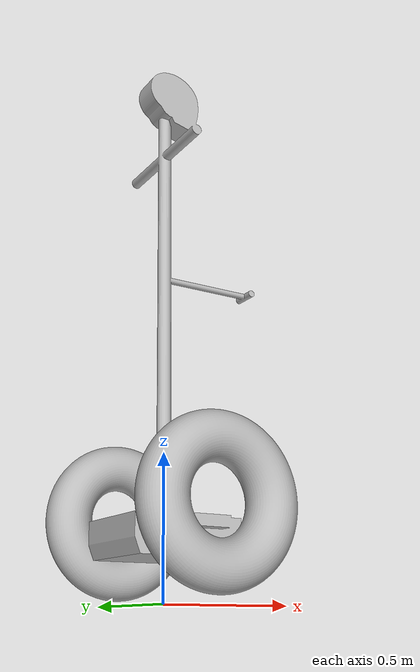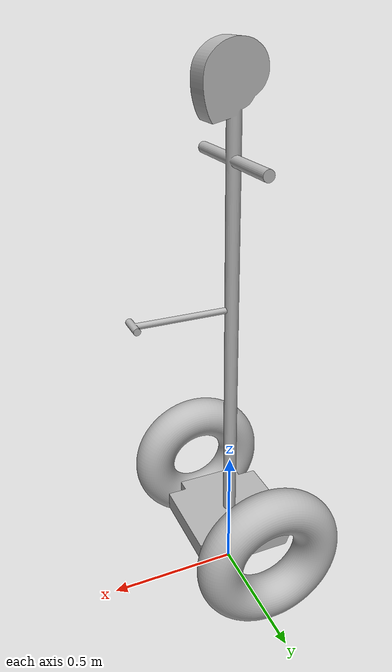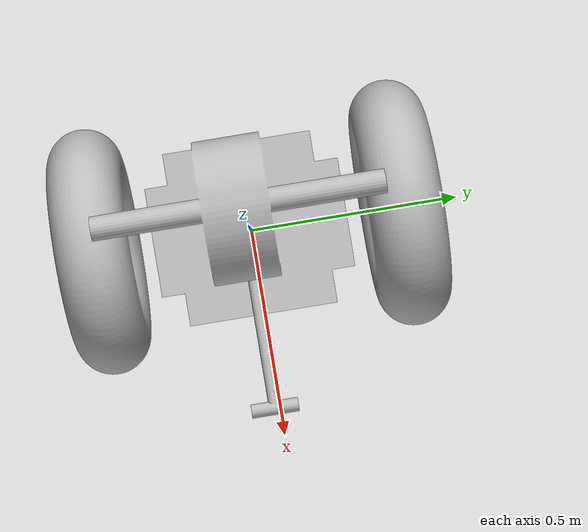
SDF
<sdf version='1.7'>
  <model name='segway'>
    <link name='base_footprint'>
      <inertial>
        <pose>0 0 1.32994 0 -0 0</pose>
        <mass>80.005</mass>
        <inertia>
          <ixx>0.0212318</ixx>
          <ixy>0</ixy>
          <ixz>0</ixz>
          <iyy>0.0177018</iyy>
          <iyz>0</iyz>
          <izz>0.00439902</izz>
        </inertia>
      </inertial>
      <collision name='base_footprint_fixed_joint_lump__base_link_collision'>
        <pose>0 0 0 0 -0 0</pose>
        <geometry>
          <mesh>
            <scale>1 1 1</scale>
            <uri>model://segway/meshes/STL/base/body.stl</uri>
          </mesh>
        </geometry>
        <surface>
          <contact>
            <ode/>
          </contact>
          <friction>
            <ode>
              <mu>0.05</mu>
              <mu2>0.05</mu2>
            </ode>
          </friction>
        </surface>
      </collision>
      <visual name='base_footprint_fixed_joint_lump__base_link_visual'>
        <pose>0 0 0 0 -0 0</pose>
        <geometry>
          <mesh>
            <scale>1 1 1</scale>
            <uri>model://segway/meshes/DAE/base/body.dae</uri>
          </mesh>
        </geometry>
      </visual>
      <self_collide>0</self_collide>
      <gravity>1</gravity>
      <sensor name='imu_sensor' type='imu'>
        <always_on>1</always_on>
        <update_rate>100</update_rate>
        <visualize>1</visualize>
        <topic>__default_topic__</topic>
        <plugin name='imu_plugin' filename='libgazebo_ros_imu_sensor.so'>
          <topicName>imu</topicName>
          <update_rate>0</update_rate>
          <bodyName>imu_link</bodyName>
          <updateRateHZ>15.0</updateRateHZ>
          <gaussianNoise>0.0</gaussianNoise>
          <xyzOffset>0 0 0</xyzOffset>
          <rpyOffset>0 0 0</rpyOffset>
          <frameName>base_link</frameName>
          <initial_orientation_as_reference>0</initial_orientation_as_reference>
        </plugin>
        <pose>0 0 0.297322 0 -0 0</pose>
      </sensor>
    </link>
    <joint name='left_wheel_joint' type='revolute'>
      <pose relative_to='base_footprint'>0 -0.238506 0.297322 0 0 -3.14159</pose>
      <parent>base_footprint</parent>
      <child>left_wheel_link</child>
      <axis>
        <xyz>0 -1 0</xyz>
        <limit>
          <lower>-1e+16</lower>
          <upper>1e+16</upper>
        </limit>
        <dynamics>
          <spring_reference>0</spring_reference>
          <spring_stiffness>0</spring_stiffness>
        </dynamics>
      </axis>
    </joint>
    <link name='left_wheel_link'>
      <pose relative_to='left_wheel_joint'>0 0 0 0 -0 0</pose>
      <inertial>
        <pose>0 0.106 0 0 -0 0</pose>
        <mass>0.5</mass>
        <inertia>
          <ixx>0.00119</ixx>
          <ixy>0</ixy>
          <ixz>0</ixz>
          <iyy>0.0022</iyy>
          <iyz>0</iyz>
          <izz>0.00119</izz>
        </inertia>
      </inertial>
      <collision name='left_wheel_link_collision'>
        <pose>0 0 0 0 -0 0</pose>
        <geometry>
          <mesh>
            <scale>1 1 1</scale>
            <uri>model://segway/meshes/STL/wheel/wheel_sim.stl</uri>
          </mesh>
        </geometry>
        <surface>
          <contact>
            <ode/>
          </contact>
          <friction>
            <ode>
              <mu>0.8</mu>
              <mu2>0.8</mu2>
            </ode>
          </friction>
        </surface>
      </collision>
      <visual name='left_wheel_link_visual'>
        <pose>0 0 0 0 -0 0</pose>
        <geometry>
          <mesh>
            <scale>1 1 1</scale>
            <uri>model://segway/meshes/DAE/wheel/wheel_sim.dae</uri>
          </mesh>
        </geometry>
      </visual>
      <self_collide>0</self_collide>
    </link>
    <joint name='right_wheel_joint' type='revolute'>
      <pose relative_to='base_footprint'>0 0.238506 0.297322 0 -0 0</pose>
      <parent>base_footprint</parent>
      <child>right_wheel_link</child>
      <axis>
        <xyz>0 1 0</xyz>
        <limit>
          <lower>-1e+16</lower>
          <upper>1e+16</upper>
        </limit>
        <dynamics>
          <spring_reference>0</spring_reference>
          <spring_stiffness>0</spring_stiffness>
        </dynamics>
      </axis>
    </joint>
    <link name='right_wheel_link'>
      <pose relative_to='right_wheel_joint'>0 0 0 0 -0 0</pose>
      <inertial>
        <pose>0 0.106 0 0 -0 0</pose>
        <mass>0.5</mass>
        <inertia>
          <ixx>0.00119</ixx>
          <ixy>0</ixy>
          <ixz>0</ixz>
          <iyy>0.0022</iyy>
          <iyz>0</iyz>
          <izz>0.00119</izz>
        </inertia>
      </inertial>
      <collision name='right_wheel_link_collision'>
        <pose>0 0 0 0 -0 0</pose>
        <geometry>
          <mesh>
            <scale>1 1 1</scale>
            <uri>model://segway/meshes/STL/wheel/wheel_sim.stl</uri>
          </mesh>
        </geometry>
        <surface>
          <contact>
            <ode/>
          </contact>
          <friction>
            <ode>
              <mu>0.8</mu>
              <mu2>0.8</mu2>
            </ode>
          </friction>
        </surface>
      </collision>
      <visual name='right_wheel_link_visual'>
        <pose>0 0 0 0 -0 0</pose>
        <geometry>
          <mesh>
            <scale>1 1 1</scale>
            <uri>model://segway/meshes/DAE/wheel/wheel_sim.dae</uri>
          </mesh>
        </geometry>
      </visual>
      <self_collide>0</self_collide>
    </link>
    <static>0</static>
    <plugin name='gazebo_ros_control' filename='libgazebo_ros_control.so'>
      <robotNamespace>/segway</robotNamespace>
      <robotParam>/segway</robotParam>
      <robotSimType>gazebo_ros_control/DefaultRobotHWSim</robotSimType>
    </plugin>
    <plugin name='differential_drive_controller' filename='libgazebo_ros_diff_drive.so'>
      <ros>
        <namespace>/segway</namespace>
      </ros>
      <left_joint>left_wheel_joint</left_joint>
      <right_joint>right_wheel_joint</right_joint>
      <wheel_separation>0.66</wheel_separation>
      <wheel_diameter>0.56</wheel_diameter>
      <max_wheel_torque>10.0</max_wheel_torque>
      <max_wheel_acceleration>10.0</max_wheel_acceleration>
      <publish_odom>1</publish_odom>
      <publish_odom_tf>1</publish_odom_tf>
      <odometry_frame>odom</odometry_frame>
      <robot_base_frame>base_link</robot_base_frame>
    </plugin>
  </model>
</sdf>
